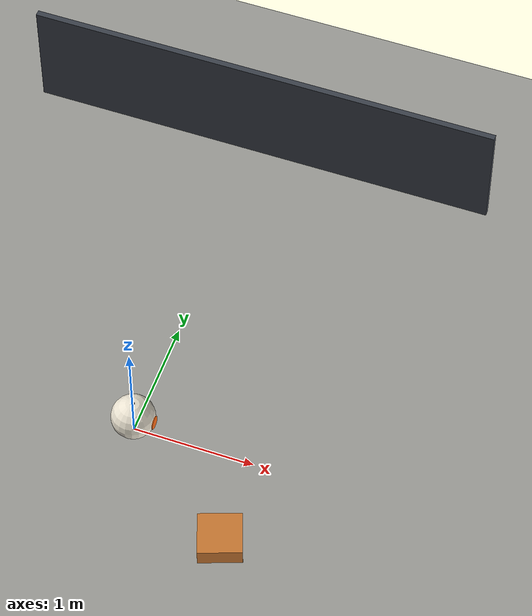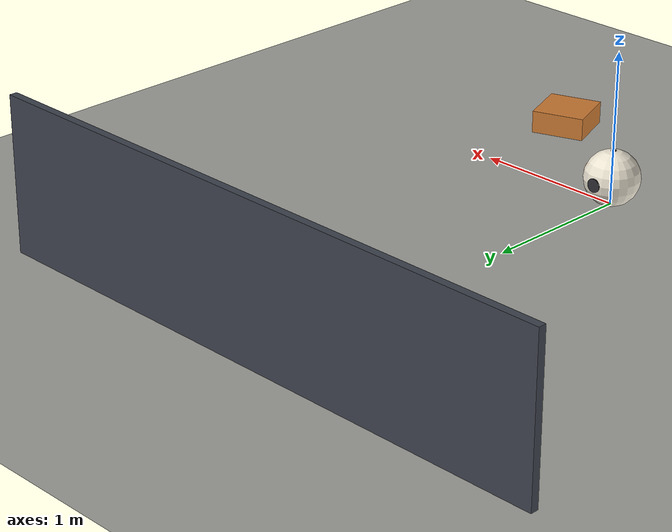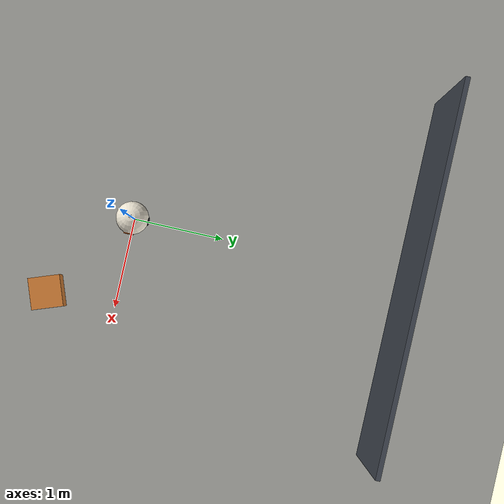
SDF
<?xml version="1.0" ?>
<sdf version="1.10">
  <world name="bb8_room">
    <gravity>0 0 -9.8</gravity>

    <physics name="bb8_default_physics" type="ignored">
      <max_step_size>0.001</max_step_size>
      <real_time_factor>1.0</real_time_factor>
      <real_time_update_rate>1000</real_time_update_rate>
    </physics>

    <scene>
      <ambient>0.45 0.45 0.45 1</ambient>
      <background>0.70 0.78 0.88 1</background>
      <shadows>true</shadows>
    </scene>

    <light name="sun" type="directional">
      <cast_shadows>true</cast_shadows>
      <pose>-3 -2 10 0 0 0</pose>
      <diffuse>0.9 0.86 0.78 1</diffuse>
      <specular>0.25 0.25 0.22 1</specular>
      <direction>0.45 0.25 -0.85</direction>
    </light>

    <model name="ground_plane">
      <static>true</static>
      <link name="link">
        <collision name="collision">
          <geometry>
            <plane>
              <normal>0 0 1</normal>
              <size>20 20</size>
            </plane>
          </geometry>
          <surface>
            <friction>
              <ode>
                <mu>1.0</mu>
                <mu2>1.0</mu2>
              </ode>
            </friction>
          </surface>
        </collision>
        <visual name="visual">
          <geometry>
            <plane>
              <normal>0 0 1</normal>
              <size>20 20</size>
            </plane>
          </geometry>
          <material>
            <ambient>0.62 0.62 0.60 1</ambient>
            <diffuse>0.62 0.62 0.60 1</diffuse>
          </material>
        </visual>
      </link>
    </model>

    <include>
      <uri>model://bb8_rolling_sphere</uri>
      <name>bb8</name>
      <pose>0 0 0.18 0 0 0</pose>
    </include>

    <model name="calibration_wall_left">
      <static>true</static>
      <pose>0 3.0 0.5 0 0 0</pose>
      <link name="link">
        <collision name="collision">
          <geometry>
            <box>
              <size>4.0 0.05 1.0</size>
            </box>
          </geometry>
        </collision>
        <visual name="visual">
          <geometry>
            <box>
              <size>4.0 0.05 1.0</size>
            </box>
          </geometry>
          <material>
            <ambient>0.24 0.26 0.30 1</ambient>
            <diffuse>0.24 0.26 0.30 1</diffuse>
          </material>
        </visual>
      </link>
    </model>

    <model name="low_obstacle_box">
      <static>true</static>
      <pose>1.0 -0.75 0.075 0 0 0.35</pose>
      <link name="link">
        <collision name="collision">
          <geometry>
            <box>
              <size>0.35 0.35 0.15</size>
            </box>
          </geometry>
        </collision>
        <visual name="visual">
          <geometry>
            <box>
              <size>0.35 0.35 0.15</size>
            </box>
          </geometry>
          <material>
            <ambient>0.80 0.48 0.20 1</ambient>
            <diffuse>0.80 0.48 0.20 1</diffuse>
          </material>
        </visual>
      </link>
    </model>
  </world>
</sdf>

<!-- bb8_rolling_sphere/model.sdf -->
<sdf version="1.10">
  <model name="bb8_rolling_sphere">

    <static>false</static>
    <self_collide>false</self_collide>
    <allow_auto_disable>false</allow_auto_disable>

    <link name="shell">
      <pose>0 0 0 0 0 0</pose>

      <inertial>
        <mass>1.20</mass>
        <!-- Solid sphere approximation: I = 2/5 * m * r^2, r = 0.18m. -->
        <inertia>
          <ixx>0.015552</ixx>
          <ixy>0</ixy>
          <ixz>0</ixz>
          <iyy>0.015552</iyy>
          <iyz>0</iyz>
          <izz>0.015552</izz>
        </inertia>
      </inertial>

      <collision name="shell_collision">
        <geometry>
          <sphere>
            <radius>0.18</radius>
          </sphere>
        </geometry>
        <surface>
          <friction>
            <ode>
              <mu>1.0</mu>
              <mu2>1.0</mu2>
            </ode>
          </friction>
          <bounce>
            <restitution_coefficient>0.05</restitution_coefficient>
            <threshold>0.1</threshold>
          </bounce>
        </surface>
      </collision>

      <visual name="shell_visual">
        <geometry>
          <sphere>
            <radius>0.18</radius>
          </sphere>
        </geometry>
        <material>
          <ambient>0.94 0.91 0.84 1</ambient>
          <diffuse>0.94 0.91 0.84 1</diffuse>
          <specular>0.25 0.25 0.22 1</specular>
        </material>
      </visual>

      <visual name="front_orange_panel">
        <pose>0.178 0 0 0 1.5708 0</pose>
        <geometry>
          <cylinder>
            <radius>0.055</radius>
            <length>0.006</length>
          </cylinder>
        </geometry>
        <material>
          <ambient>1.0 0.42 0.08 1</ambient>
          <diffuse>1.0 0.42 0.08 1</diffuse>
        </material>
      </visual>

      <visual name="left_gray_panel">
        <pose>0 0.178 0 1.5708 0 0</pose>
        <geometry>
          <cylinder>
            <radius>0.045</radius>
            <length>0.006</length>
          </cylinder>
        </geometry>
        <material>
          <ambient>0.18 0.18 0.20 1</ambient>
          <diffuse>0.18 0.18 0.20 1</diffuse>
        </material>
      </visual>

      <visual name="top_reference_dot">
        <pose>0 0 0.178 0 0 0</pose>
        <geometry>
          <sphere>
            <radius>0.018</radius>
          </sphere>
        </geometry>
        <material>
          <ambient>0.05 0.05 0.06 1</ambient>
          <diffuse>0.05 0.05 0.06 1</diffuse>
        </material>
      </visual>
    </link>

    <link name="internal_ballast">
      <pose>0 0 -0.07 0 0 0</pose>
      <inertial>
        <mass>0.45</mass>
        <inertia>
          <ixx>0.00085</ixx>
          <ixy>0</ixy>
          <ixz>0</ixz>
          <iyy>0.00085</iyy>
          <iyz>0</iyz>
          <izz>0.00085</izz>
        </inertia>
      </inertial>
      <visual name="ballast_visual">
        <geometry>
          <box>
            <size>0.12 0.08 0.04</size>
          </box>
        </geometry>
        <material>
          <ambient>0.08 0.08 0.09 0.55</ambient>
          <diffuse>0.08 0.08 0.09 0.55</diffuse>
        </material>
      </visual>
    </link>

    <joint name="ballast_fixed_joint" type="fixed">
      <parent>shell</parent>
      <child>internal_ballast</child>
    </joint>
  </model>
</sdf>
